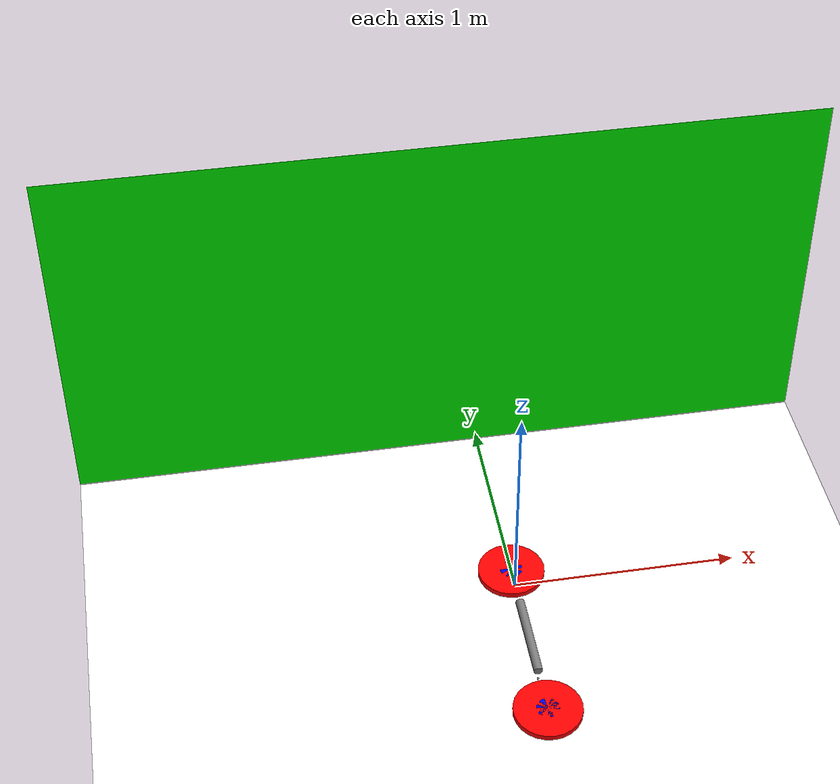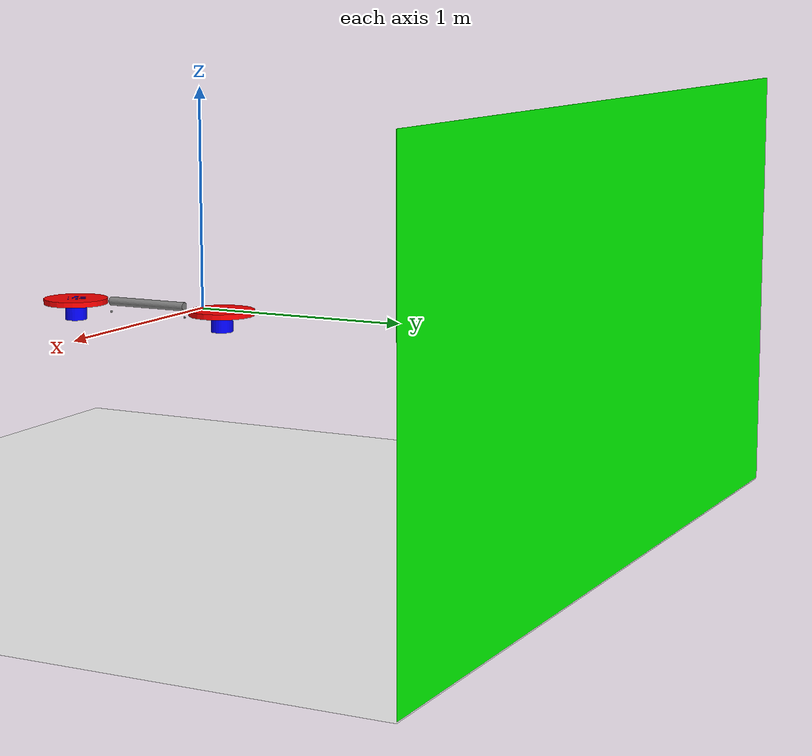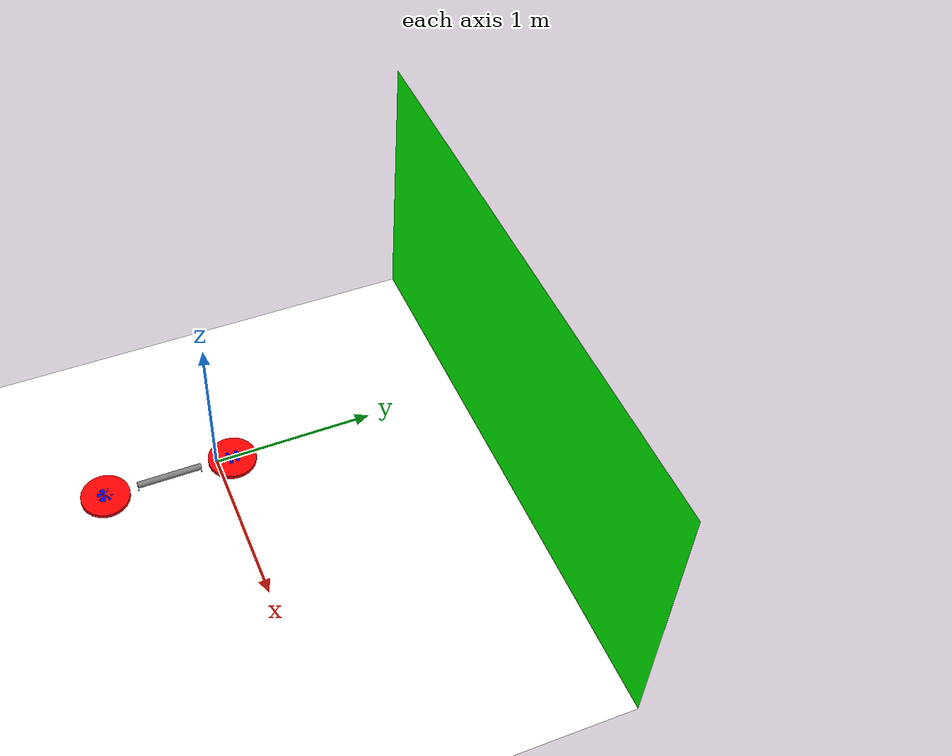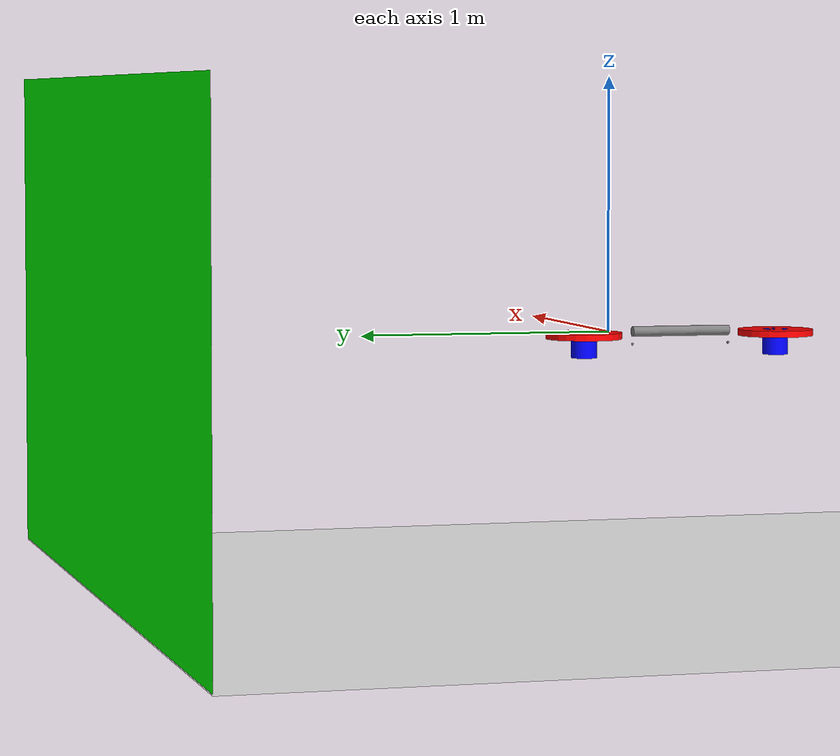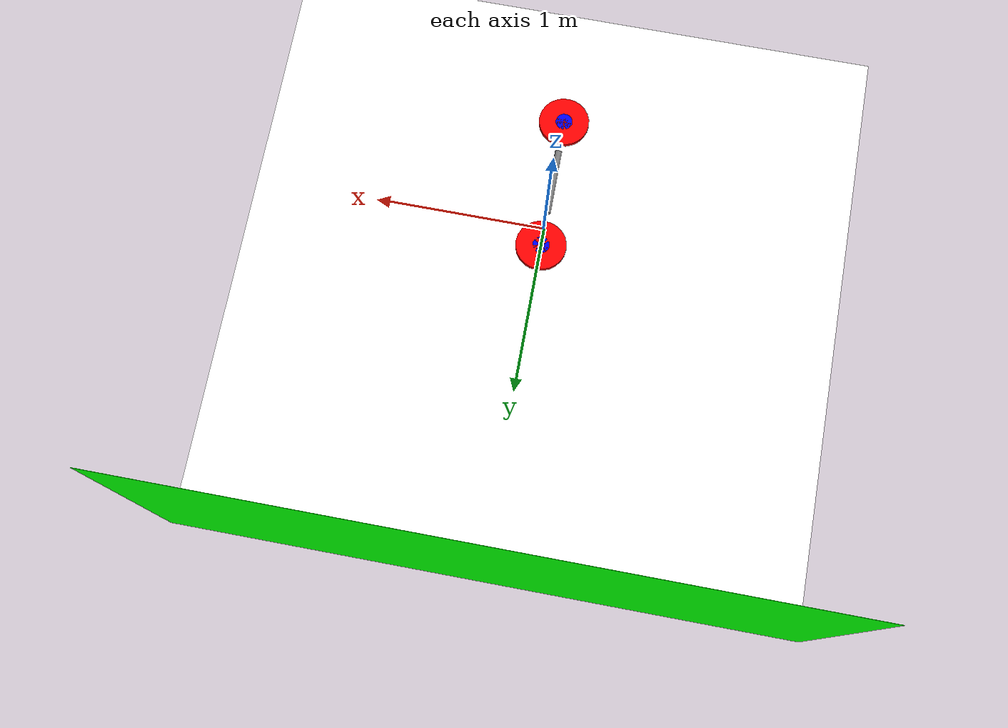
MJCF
<!-- The Lappa robot -->
<mujoco>
    <!-- set options to simulate underwater environment  -->
    <option density="900" viscosity=" 0.0009" />
    <include file="Lappa.xml"/>
	<worldbody>
		<geom name="floor" pos="0 0 -1" size="2 2 .2" type="plane" conaffinity="1" rgba="1 1 1 1"
			condim="3" />
            <!-- vertical wall in the center of the floor -->
        <geom name="wall" pos="0 2 0" size="1 2 2" type="plane" conaffinity="1" rgba="0 1 0 1"
            condim="3" euler="90 0 90" />
            <!-- horizontal wall in the center of the floor -->
	</worldbody>
</mujoco>

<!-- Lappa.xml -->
<!-- The Lappa robot -->
<mujoco model="Lappa">
	<worldbody>
		<body name="root" pos="0 -.3 0">
			<joint name="root_a" type="free" damping="0" armature="0" pos="0 0 0" />
			<geom name="core" type="cylinder" fromto="0 -.2 0 0 .2 0" size=".02" mass=".001" />
            <site name="rot_a" pos="0 -.2 -.05" />
            <site name="rot_b" pos="0 .2 -.05" />
            <body name="module_a" pos="0 -.4 0">
                <geom name="housing_a" type="cylinder" fromto="0 0 -.025 0 0 0" size=".15" rgba="1 0 0 1" mass=".05" />
                <joint type="hinge" name="joint_a" axis="1 0 0" pos="0 .25 0" limited="true" range="-90 45" />
                <body name="chamber_a">
                    <geom name="chamber_a" type="cylinder" fromto="0 0 0 0 0 -.1" size=".05" rgba="0 0 1 1" mass=".05" />
                    <site name="propeller_a" pos="0 0 -.05" />
                </body>
            </body>
            <body name="module_b" pos="0 .4 0">
                <geom name="housing_b" type="cylinder" fromto="0 0 -.025 0 0 0" size=".15" rgba="1 0 0 1" mass=".05" />
                <joint type="hinge" name="joint_b" axis="1 0 0" pos="0 -.25 0" limited="true" range="-45 90" />
                <body name="chamber_b">
                    <geom name="chamber_b" type="cylinder" fromto="0 0 0 0 0 -.1" size=".05" rgba="0 0 1 1" mass=".05" />
                    <site name="propeller_b" pos="0 0 -.05" />
                </body>
            </body>
		</body>
	</worldbody>
	<equality>
	</equality>
	<actuator>
        <motor name="a_propeller" site="propeller_a" ctrllimited="true" ctrlrange="-1. 1." gear="0  0. 3. 0. 0. 0."  />
        <motor name="b_propeller" site="propeller_b" ctrllimited="true" ctrlrange="-1. 1." gear="0  0. 3. 0. 0. 0."  />
        <velocity name="a_rotate" site="rot_a" ctrllimited="true" ctrlrange="-1 1" gear="0 0 0 0 0 1" kv="1" />
        <velocity name="b_rotate" site="rot_b" ctrllimited="true" ctrlrange="-1 1" gear="0 0 0 0 0 1" kv="1" />
	</actuator>
</mujoco>
